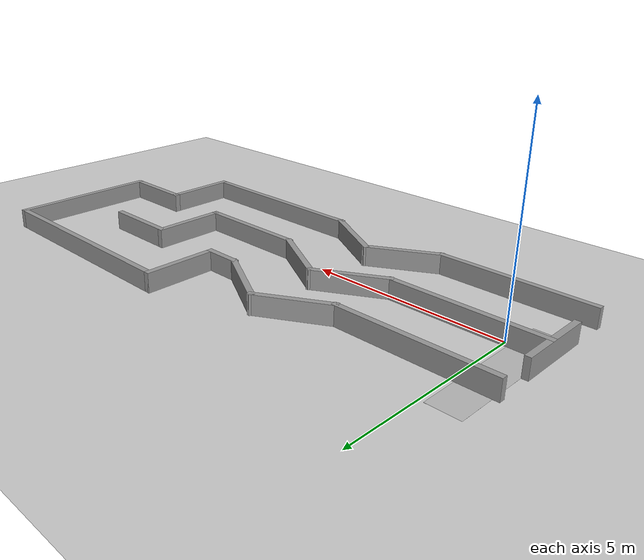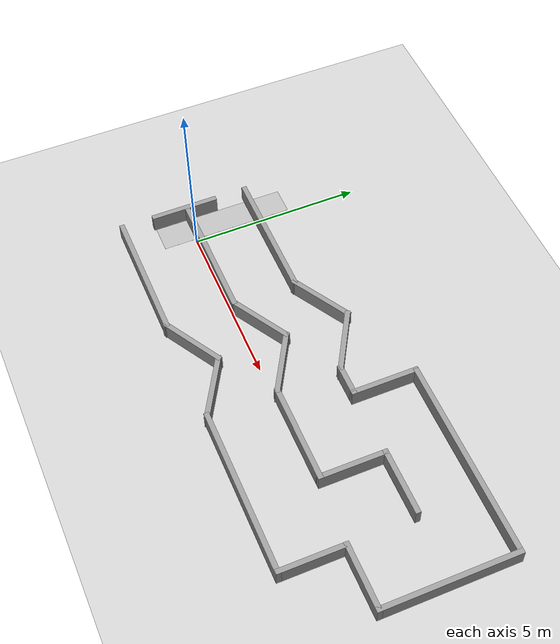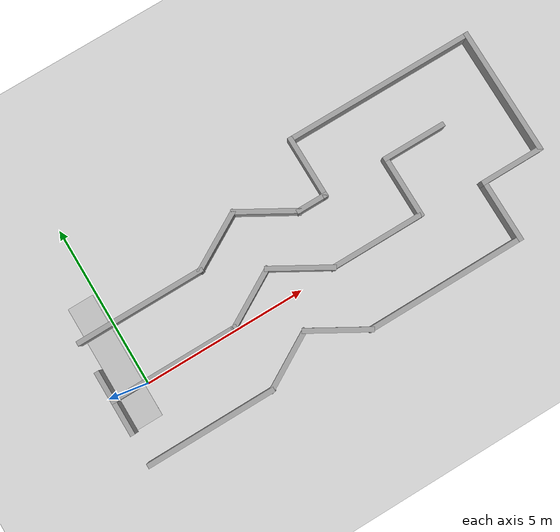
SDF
<sdf version="1.6">
 <world name="default">
  <light name="sun" type="directional">
   <pose>0 0 10 0 -0 0</pose>
   <diffuse>0.8 0.8 0.8 1</diffuse>
   <specular>0.1 0.1 0.1 1</specular>
   <attenuation>
    <range>1000</range>
    <constant>0.9</constant>
    <linear>0.01</linear>
    <quadratic>0.001</quadratic>
   </attenuation>
   <direction>-0.5 0.5 -1</direction>
  </light>
  <model name="ground_plane">
   <static>1</static>
   <link name="link">
    <collision name="collision">
     <geometry><plane><normal>0 0 1</normal><size>100 100</size></plane></geometry>
     <surface><friction><ode><mu>100</mu><mu2>50</mu2></ode></friction></surface>
    </collision>
    <visual name="visual">
     <cast_shadows>0</cast_shadows>
     <geometry><plane><normal>0 0 1</normal><size>100 100</size></plane></geometry>
     <material>
      <script><uri>file://media/materials/scripts/gazebo.material</uri><name>Gazebo/Grey</name></script>
     </material>
    </visual>
   </link>
  </model>
  <gravity>0 0 -9.8</gravity>
  <magnetic_field>6e-06 2.3e-05 -4.2e-05</magnetic_field>
  <atmosphere type="adiabatic"/>
  <physics name="default_physics" default="0" type="ode">
   <max_step_size>0.001</max_step_size>
   <real_time_factor>1</real_time_factor>
   <real_time_update_rate>1000</real_time_update_rate>
  </physics>
  <scene><ambient>0.4 0.4 0.4 1</ambient><background>0.7 0.7 0.7 1</background><shadows>1</shadows></scene>
  <spherical_coordinates>
   <surface_model>EARTH_WGS84</surface_model>
   <latitude_deg>0</latitude_deg>
   <longitude_deg>0</longitude_deg>
   <elevation>0</elevation>
   <heading_deg>0</heading_deg>
  </spherical_coordinates>
  <model name="USTB_1.world">
   <pose>5.90402 0.911258 0 0 -0 0</pose>
   <link name="Wall_0">
    <collision name="Wall_0_Collision">
     <geometry><box><size>2 0.15 0.5</size></box></geometry>
     <pose>0 0 0.25 0 -0 0</pose>
    </collision>
    <visual name="Wall_0_Visual">
     <pose>0 0 0.25 0 -0 0</pose>
     <geometry><box><size>2 0.15 0.5</size></box></geometry>
     <material>
      <script><uri>file://media/materials/scripts/gazebo.material</uri><name>Gazebo/Grey</name></script>
      <ambient>1 1 1 1</ambient>
     </material>
     <meta><layer>0</layer></meta>
    </visual>
    <pose>-6.877 -0.911258 0 0 -0 1.5708</pose>
   </link>
   <link name="Wall_1">
    <collision name="Wall_1_Collision">
     <geometry><box><size>4 0.15 0.5</size></box></geometry>
     <pose>0 0 0.25 0 -0 0</pose>
    </collision>
    <visual name="Wall_1_Visual">
     <pose>0 0 0.25 0 -0 0</pose>
     <geometry><box><size>4 0.15 0.5</size></box></geometry>
     <material>
      <script><uri>file://media/materials/scripts/gazebo.material</uri><name>Gazebo/Grey</name></script>
      <ambient>1 1 1 1</ambient>
     </material>
     <meta><layer>0</layer></meta>
    </visual>
    <pose>-4.952 1.01374 0 0 -0 0</pose>
   </link>
   <link name="Wall_10">
    <collision name="Wall_10_Collision">
     <geometry><box><size>2 0.15 0.5</size></box></geometry>
     <pose>0 0 0.25 0 -0 0</pose>
    </collision>
    <visual name="Wall_10_Visual">
     <pose>0 0 0.25 0 -0 0</pose>
     <geometry><box><size>2 0.15 0.5</size></box></geometry>
     <material>
      <script><uri>file://media/materials/scripts/gazebo.material</uri><name>Gazebo/Grey</name></script>
      <ambient>1 1 1 1</ambient>
     </material>
     <meta><layer>0</layer></meta>
    </visual>
    <pose>5.027 -1.91126 0 0 0 -1.5708</pose>
   </link>
   <link name="Wall_14">
    <collision name="Wall_14_Collision">
     <geometry><box><size>4 0.15 0.5</size></box></geometry>
     <pose>0 0 0.25 0 -0 0</pose>
    </collision>
    <visual name="Wall_14_Visual">
     <pose>0 0 0.25 0 -0 0</pose>
     <geometry><box><size>4 0.15 0.5</size></box></geometry>
     <material>
      <script><uri>file://media/materials/scripts/gazebo.material</uri><name>Gazebo/Grey</name></script>
      <ambient>1 1 1 1</ambient>
     </material>
     <meta><layer>0</layer></meta>
    </visual>
    <pose>-4.952 -0.836258 0 0 -0 3.14159</pose>
   </link>
   <link name="Wall_16">
    <collision name="Wall_16_Collision">
     <geometry><box><size>2 0.15 0.5</size></box></geometry>
     <pose>0 0 0.25 0 -0 0</pose>
    </collision>
    <visual name="Wall_16_Visual">
     <pose>0 0 0.25 0 -0 0</pose>
     <geometry><box><size>2 0.15 0.5</size></box></geometry>
     <material>
      <script><uri>file://media/materials/scripts/gazebo.material</uri><name>Gazebo/Grey</name></script>
      <ambient>1 1 1 1</ambient>
     </material>
     <meta><layer>0</layer></meta>
    </visual>
    <pose>-2.226 -0.373758 0 0 -0 0.523639</pose>
   </link>
   <link name="Wall_17">
    <collision name="Wall_17_Collision">
     <geometry><box><size>2 0.15 0.5</size></box></geometry>
     <pose>0 0 0.25 0 -0 0</pose>
    </collision>
    <visual name="Wall_17_Visual">
     <pose>0 0 0.25 0 -0 0</pose>
     <geometry><box><size>2 0.15 0.5</size></box></geometry>
     <material>
      <script><uri>file://media/materials/scripts/gazebo.material</uri><name>Gazebo/Grey</name></script>
      <ambient>1 1 1 1</ambient>
     </material>
     <meta><layer>0</layer></meta>
    </visual>
    <pose>-0.624 -0.373758 0 0 0 -0.523639</pose>
   </link>
   <link name="Wall_18">
    <collision name="Wall_18_Collision">
     <geometry><box><size>3 0.15 0.5</size></box></geometry>
     <pose>0 0 0.25 0 -0 0</pose>
    </collision>
    <visual name="Wall_18_Visual">
     <pose>0 0 0.25 0 -0 0</pose>
     <geometry><box><size>3 0.15 0.5</size></box></geometry>
     <material>
      <script><uri>file://media/materials/scripts/gazebo.material</uri><name>Gazebo/Grey</name></script>
      <ambient>1 1 1 1</ambient>
     </material>
     <meta><layer>0</layer></meta>
    </visual>
    <pose>1.602 -0.836258 0 0 -0 0</pose>
   </link>
   <link name="Wall_19">
    <collision name="Wall_19_Collision">
     <geometry><box><size>2 0.15 0.5</size></box></geometry>
     <pose>0 0 0.25 0 -0 0</pose>
    </collision>
    <visual name="Wall_19_Visual">
     <pose>0 0 0.25 0 -0 0</pose>
     <geometry><box><size>2 0.15 0.5</size></box></geometry>
     <material>
      <script><uri>file://media/materials/scripts/gazebo.material</uri><name>Gazebo/Grey</name></script>
      <ambient>1 1 1 1</ambient>
     </material>
     <meta><layer>0</layer></meta>
    </visual>
    <pose>3.027 0.088742 0 0 -0 1.5708</pose>
   </link>
   <link name="Wall_2">
    <collision name="Wall_2_Collision">
     <geometry><box><size>1.99987 0.15 0.5</size></box></geometry>
     <pose>0 0 0.25 0 -0 0</pose>
    </collision>
    <visual name="Wall_2_Visual">
     <pose>0 0 0.25 0 -0 0</pose>
     <geometry><box><size>1.99987 0.15 0.5</size></box></geometry>
     <material>
      <script><uri>file://media/materials/scripts/gazebo.material</uri><name>Gazebo/Grey</name></script>
      <ambient>1 1 1 1</ambient>
     </material>
     <meta><layer>0</layer></meta>
    </visual>
    <pose>-2.226 1.47624 0 0 -0 0.523639</pose>
   </link>
   <link name="Wall_20">
    <collision name="Wall_20_Collision">
     <geometry><box><size>2 0.15 0.5</size></box></geometry>
     <pose>0 0 0.25 0 -0 0</pose>
    </collision>
    <visual name="Wall_20_Visual">
     <pose>0 0 0.25 0 -0 0</pose>
     <geometry><box><size>2 0.15 0.5</size></box></geometry>
     <material>
      <script><uri>file://media/materials/scripts/gazebo.material</uri><name>Gazebo/Grey</name></script>
      <ambient>1 1 1 1</ambient>
     </material>
     <meta><layer>0</layer></meta>
    </visual>
    <pose>3.952 1.01374 0 0 -0 0</pose>
   </link>
   <link name="Wall_22">
    <collision name="Wall_22_Collision">
     <geometry><box><size>5 0.15 0.5</size></box></geometry>
     <pose>0 0 0.25 0 -0 0</pose>
    </collision>
    <visual name="Wall_22_Visual">
     <pose>0 0 0.25 0 -0 0</pose>
     <geometry><box><size>5 0.15 0.5</size></box></geometry>
     <material>
      <script><uri>file://media/materials/scripts/gazebo.material</uri><name>Gazebo/Grey</name></script>
      <ambient>1 1 1 1</ambient>
     </material>
     <meta><layer>0</layer></meta>
    </visual>
    <pose>2.602 -2.83626 0 0 -0 3.14159</pose>
   </link>
   <link name="Wall_23">
    <collision name="Wall_23_Collision">
     <geometry><box><size>2 0.15 0.5</size></box></geometry>
     <pose>0 0 0.25 0 -0 0</pose>
    </collision>
    <visual name="Wall_23_Visual">
     <pose>0 0 0.25 0 -0 0</pose>
     <geometry><box><size>2 0.15 0.5</size></box></geometry>
     <material>
      <script><uri>file://media/materials/scripts/gazebo.material</uri><name>Gazebo/Grey</name></script>
      <ambient>1 1 1 1</ambient>
     </material>
     <meta><layer>0</layer></meta>
    </visual>
    <pose>-0.624 -2.37376 0 0 -0 2.61795</pose>
   </link>
   <link name="Wall_24">
    <collision name="Wall_24_Collision">
     <geometry><box><size>2 0.15 0.5</size></box></geometry>
     <pose>0 0 0.25 0 -0 0</pose>
    </collision>
    <visual name="Wall_24_Visual">
     <pose>0 0 0.25 0 -0 0</pose>
     <geometry><box><size>2 0.15 0.5</size></box></geometry>
     <material>
      <script><uri>file://media/materials/scripts/gazebo.material</uri><name>Gazebo/Grey</name></script>
      <ambient>1 1 1 1</ambient>
     </material>
     <meta><layer>0</layer></meta>
    </visual>
    <pose>-2.226 -2.37376 0 0 0 -2.61795</pose>
   </link>
   <link name="Wall_25">
    <collision name="Wall_25_Collision">
     <geometry><box><size>4 0.15 0.5</size></box></geometry>
     <pose>0 0 0.25 0 -0 0</pose>
    </collision>
    <visual name="Wall_25_Visual">
     <pose>0 0 0.25 0 -0 0</pose>
     <geometry><box><size>4 0.15 0.5</size></box></geometry>
     <material>
      <script><uri>file://media/materials/scripts/gazebo.material</uri><name>Gazebo/Grey</name></script>
      <ambient>1 1 1 1</ambient>
     </material>
     <meta><layer>0</layer></meta>
    </visual>
    <pose>-4.952 -2.83626 0 0 -0 3.14159</pose>
   </link>
   <link name="Wall_3">
    <collision name="Wall_3_Collision">
     <geometry><box><size>2 0.15 0.5</size></box></geometry>
     <pose>0 0 0.25 0 -0 0</pose>
    </collision>
    <visual name="Wall_3_Visual">
     <pose>0 0 0.25 0 -0 0</pose>
     <geometry><box><size>2 0.15 0.5</size></box></geometry>
     <material>
      <script><uri>file://media/materials/scripts/gazebo.material</uri><name>Gazebo/Grey</name></script>
      <ambient>1 1 1 1</ambient>
     </material>
     <meta><layer>0</layer></meta>
    </visual>
    <pose>-0.624 1.47624 0 0 0 -0.523639</pose>
   </link>
   <link name="Wall_4">
    <collision name="Wall_4_Collision">
     <geometry><box><size>1 0.15 0.5</size></box></geometry>
     <pose>0 0 0.25 0 -0 0</pose>
    </collision>
    <visual name="Wall_4_Visual">
     <pose>0 0 0.25 0 -0 0</pose>
     <geometry><box><size>1 0.15 0.5</size></box></geometry>
     <material>
      <script><uri>file://media/materials/scripts/gazebo.material</uri><name>Gazebo/Grey</name></script>
      <ambient>1 1 1 1</ambient>
     </material>
     <meta><layer>0</layer></meta>
    </visual>
    <pose>0.602 1.01374 0 0 -0 0</pose>
   </link>
   <link name="Wall_5">
    <collision name="Wall_5_Collision">
     <geometry><box><size>2 0.15 0.5</size></box></geometry>
     <pose>0 0 0.25 0 -0 0</pose>
    </collision>
    <visual name="Wall_5_Visual">
     <pose>0 0 0.25 0 -0 0</pose>
     <geometry><box><size>2 0.15 0.5</size></box></geometry>
     <material>
      <script><uri>file://media/materials/scripts/gazebo.material</uri><name>Gazebo/Grey</name></script>
      <ambient>1 1 1 1</ambient>
     </material>
     <meta><layer>0</layer></meta>
    </visual>
    <pose>1.027 1.93874 0 0 -0 1.5708</pose>
   </link>
   <link name="Wall_7">
    <collision name="Wall_7_Collision">
     <geometry><box><size>6 0.15 0.5</size></box></geometry>
     <pose>0 0 0.25 0 -0 0</pose>
    </collision>
    <visual name="Wall_7_Visual">
     <pose>0 0 0.25 0 -0 0</pose>
     <geometry><box><size>6 0.15 0.5</size></box></geometry>
     <material>
      <script><uri>file://media/materials/scripts/gazebo.material</uri><name>Gazebo/Grey</name></script>
      <ambient>1 1 1 1</ambient>
     </material>
     <meta><layer>0</layer></meta>
    </visual>
    <pose>3.952 2.86374 0 0 -0 0</pose>
   </link>
   <link name="Wall_8">
    <collision name="Wall_8_Collision">
     <geometry><box><size>4 0.15 0.5</size></box></geometry>
     <pose>0 0 0.25 0 -0 0</pose>
    </collision>
    <visual name="Wall_8_Visual">
     <pose>0 0 0.25 0 -0 0</pose>
     <geometry><box><size>4 0.15 0.5</size></box></geometry>
     <material>
      <script><uri>file://media/materials/scripts/gazebo.material</uri><name>Gazebo/Grey</name></script>
      <ambient>1 1 1 1</ambient>
     </material>
     <meta><layer>0</layer></meta>
    </visual>
    <pose>6.877 0.938742 0 0 0 -1.5708</pose>
   </link>
   <link name="Wall_9">
    <collision name="Wall_9_Collision">
     <geometry><box><size>2 0.15 0.5</size></box></geometry>
     <pose>0 0 0.25 0 -0 0</pose>
    </collision>
    <visual name="Wall_9_Visual">
     <pose>0 0 0.25 0 -0 0</pose>
     <geometry><box><size>2 0.15 0.5</size></box></geometry>
     <material>
      <script><uri>file://media/materials/scripts/gazebo.material</uri><name>Gazebo/Grey</name></script>
      <ambient>1 1 1 1</ambient>
     </material>
     <meta><layer>0</layer></meta>
    </visual>
    <pose>5.952 -0.986258 0 0 -0 3.14159</pose>
   </link>
   <static>1</static>
  </model>
  <model name="smartcar_plane">
   <static>1</static>
   <link name="link">
    <collision name="collision">
     <geometry><box><size>0.8 3.9 0.001</size></box></geometry>
     <surface><friction><ode><mu>100</mu><mu2>50</mu2></ode></friction></surface>
    </collision>
    <visual name="visual">
     <geometry><box><size>0.8 3.9 0.001</size></box></geometry>
     <material>
      <script>
       <uri>model://smartcar_plane/materials/scripts</uri>
       <uri>model://smartcar_plane/materials/textures/</uri>
       <name>SmartcarPlane/Image</name>
      </script>
     </material>
    </visual>
   </link>
   <pose>-0.5 1 0 0 -0 0</pose>
  </model>
 </world>
</sdf>
